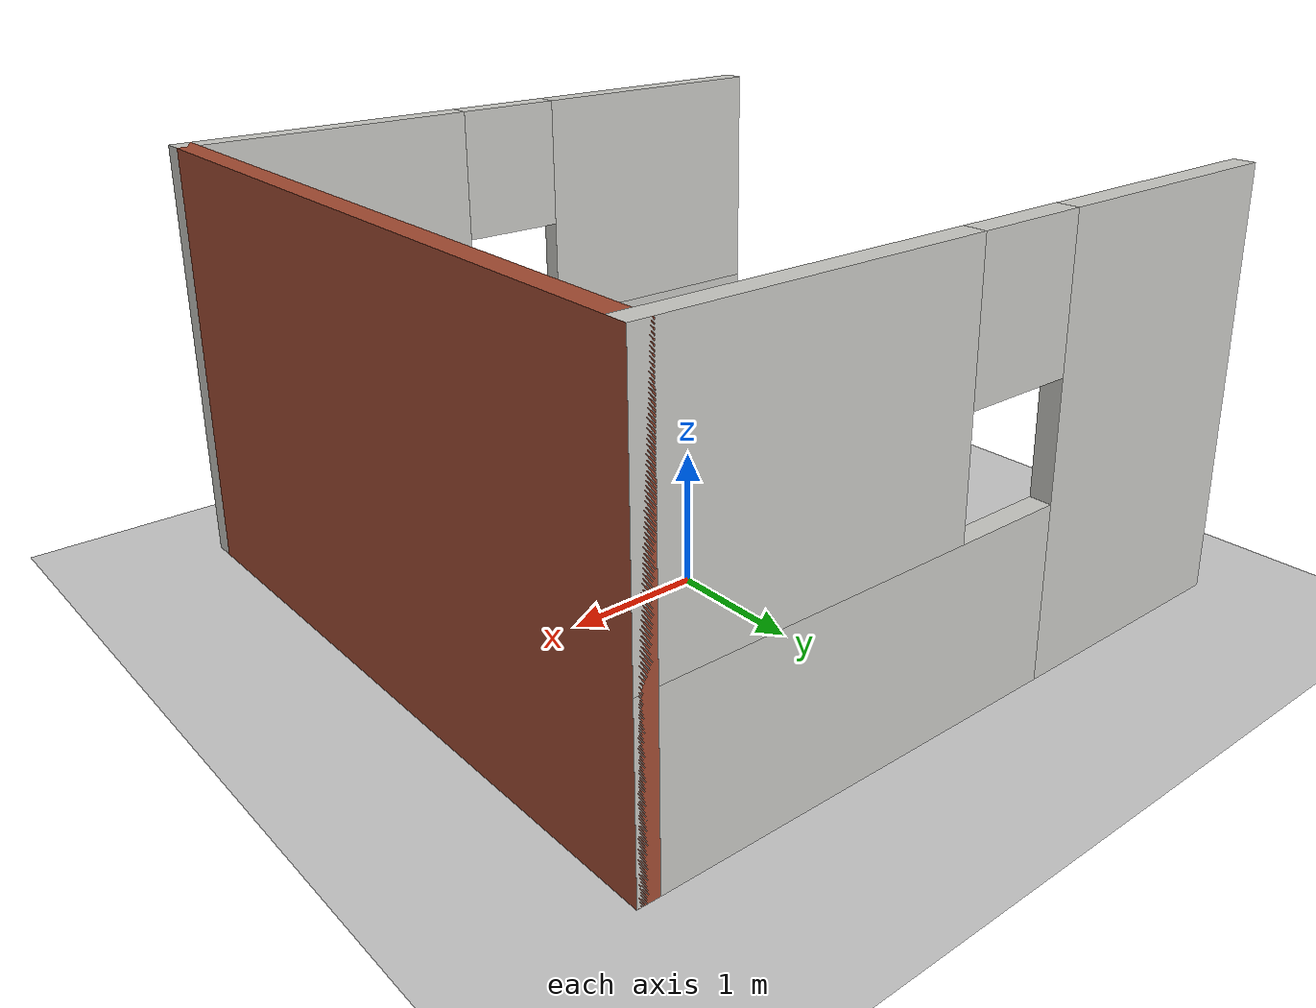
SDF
<sdf version="1.6">
 <world name="default">
  <light name="sun" type="directional">
   <pose>0 0 10 0 -0 0</pose>
   <diffuse>0.8 0.8 0.8 1</diffuse>
   <specular>0.2 0.2 0.2 1</specular>
   <attenuation>
    <range>1000</range>
    <constant>0.9</constant>
    <linear>0.01</linear>
    <quadratic>0.001</quadratic>
   </attenuation>
   <direction>-0.5 0.1 -0.9</direction>
  </light>
  <model name="ground_plane">
   <static>1</static>
   <link name="link">
    <collision name="collision">
     <geometry><plane><normal>0 0 1</normal><size>100 100</size></plane></geometry>
     <surface>
      <contact><collide_bitmask>65535</collide_bitmask></contact>
      <friction><ode><mu>100</mu><mu2>50</mu2></ode></friction>
     </surface>
    </collision>
    <visual name="visual">
     <cast_shadows>0</cast_shadows>
     <geometry><plane><normal>0 0 1</normal><size>100 100</size></plane></geometry>
     <material>
      <script><uri>file://media/materials/scripts/gazebo.material</uri><name>Gazebo/Grey</name></script>
     </material>
    </visual>
   </link>
  </model>
  <gravity>0 0 -9.8</gravity>
  <magnetic_field>6e-06 2.3e-05 -4.2e-05</magnetic_field>
  <atmosphere type="adiabatic"/>
  <physics name="default_physics" default="0" type="ode">
   <max_step_size>0.001</max_step_size>
   <real_time_factor>1</real_time_factor>
   <real_time_update_rate>1000</real_time_update_rate>
  </physics>
  <scene><ambient>0.4 0.4 0.4 1</ambient><background>0.7 0.7 0.7 1</background><shadows>1</shadows></scene>
  <audio><device>default</device></audio>
  <spherical_coordinates>
   <surface_model>EARTH_WGS84</surface_model>
   <latitude_deg>0</latitude_deg>
   <longitude_deg>0</longitude_deg>
   <elevation>0</elevation>
   <heading_deg>0</heading_deg>
  </spherical_coordinates>
  <model name="house_5x5_open_color">
   <pose>-0.019436 0.063411 0.146147 0 -0 0</pose>
   <link name="Wall_0">
    <pose>-0 2.425 0 0 -0 0</pose>
    <visual name="Wall_0_Visual_0">
     <pose>-1.56747 0 1.5 0 -0 0</pose>
     <geometry><box><size>1.86506 0.15 3</size></box></geometry>
     <material>
      <script><uri>file://media/materials/scripts/gazebo.material</uri><name>Gazebo/CeilingTiled</name></script>
      <ambient>0.760784 0.662745 0.627451 1</ambient>
     </material>
     <meta><layer>0</layer></meta>
    </visual>
    <collision name="Wall_0_Collision_0">
     <geometry><box><size>1.86506 0.15 3</size></box></geometry>
     <pose>-1.56747 0 1.5 0 -0 0</pose>
    </collision>
    <visual name="Wall_0_Visual_1">
     <pose>0.93253 0 0.6 0 -0 0</pose>
     <geometry><box><size>3.13494 0.15 1.2</size></box></geometry>
     <material>
      <script><uri>file://media/materials/scripts/gazebo.material</uri><name>Gazebo/CeilingTiled</name></script>
      <ambient>0.760784 0.662745 0.627451 1</ambient>
     </material>
     <meta><layer>0</layer></meta>
    </visual>
    <collision name="Wall_0_Collision_1">
     <geometry><box><size>3.13494 0.15 1.2</size></box></geometry>
     <pose>0.93253 0 0.6 0 -0 0</pose>
    </collision>
    <visual name="Wall_0_Visual_2">
     <pose>1.33253 0 2.1 0 -0 0</pose>
     <geometry><box><size>2.33494 0.15 1.8</size></box></geometry>
     <material>
      <script><uri>file://media/materials/scripts/gazebo.material</uri><name>Gazebo/CeilingTiled</name></script>
      <ambient>0.760784 0.662745 0.627451 1</ambient>
     </material>
     <meta><layer>0</layer></meta>
    </visual>
    <collision name="Wall_0_Collision_2">
     <geometry><box><size>2.33494 0.15 1.8</size></box></geometry>
     <pose>1.33253 0 2.1 0 -0 0</pose>
    </collision>
    <visual name="Wall_0_Visual_3">
     <pose>-0.23494 0 2.5 0 -0 0</pose>
     <geometry><box><size>0.8 0.15 1</size></box></geometry>
     <material>
      <script><uri>file://media/materials/scripts/gazebo.material</uri><name>Gazebo/CeilingTiled</name></script>
      <ambient>0.760784 0.662745 0.627451 1</ambient>
     </material>
     <meta><layer>0</layer></meta>
    </visual>
    <collision name="Wall_0_Collision_3">
     <geometry><box><size>0.8 0.15 1</size></box></geometry>
     <pose>-0.23494 0 2.5 0 -0 0</pose>
    </collision>
   </link>
   <link name="Wall_1">
    <collision name="Wall_1_Collision">
     <geometry><box><size>5 0.15 3</size></box></geometry>
     <pose>0 0 1.5 0 -0 0</pose>
    </collision>
    <visual name="Wall_1_Visual">
     <pose>0 0 1.5 0 -0 0</pose>
     <geometry><box><size>5 0.15 3</size></box></geometry>
     <material>
      <script><uri>file://media/materials/scripts/gazebo.material</uri><name>Gazebo/Bricks</name></script>
      <ambient>1 1 1 1</ambient>
     </material>
     <meta><layer>0</layer></meta>
    </visual>
    <pose>2.425 -0 0 0 -0 -1.5708</pose>
   </link>
   <link name="Wall_2">
    <pose>-0 -2.425 0 0 -0 3.14159</pose>
    <visual name="Wall_2_Visual_0">
     <pose>-1.40097 0 1.5 0 -0 0</pose>
     <geometry><box><size>2.19806 0.15 3</size></box></geometry>
     <material>
      <script><uri>file://media/materials/scripts/gazebo.material</uri><name>Gazebo/CeilingTiled</name></script>
      <ambient>0.921569 0.807843 0.615686 1</ambient>
     </material>
     <meta><layer>0</layer></meta>
    </visual>
    <collision name="Wall_2_Collision_0">
     <geometry><box><size>2.19806 0.15 3</size></box></geometry>
     <pose>-1.40097 0 1.5 0 -0 0</pose>
    </collision>
    <visual name="Wall_2_Visual_1">
     <pose>1.09903 0 0.6 0 -0 0</pose>
     <geometry><box><size>2.80194 0.15 1.2</size></box></geometry>
     <material>
      <script><uri>file://media/materials/scripts/gazebo.material</uri><name>Gazebo/CeilingTiled</name></script>
      <ambient>0.921569 0.807843 0.615686 1</ambient>
     </material>
     <meta><layer>0</layer></meta>
    </visual>
    <collision name="Wall_2_Collision_1">
     <geometry><box><size>2.80194 0.15 1.2</size></box></geometry>
     <pose>1.09903 0 0.6 0 -0 0</pose>
    </collision>
    <visual name="Wall_2_Visual_2">
     <pose>1.49903 0 2.1 0 -0 0</pose>
     <geometry><box><size>2.00194 0.15 1.8</size></box></geometry>
     <material>
      <script><uri>file://media/materials/scripts/gazebo.material</uri><name>Gazebo/CeilingTiled</name></script>
      <ambient>0.921569 0.807843 0.615686 1</ambient>
     </material>
     <meta><layer>0</layer></meta>
    </visual>
    <collision name="Wall_2_Collision_2">
     <geometry><box><size>2.00194 0.15 1.8</size></box></geometry>
     <pose>1.49903 0 2.1 0 -0 0</pose>
    </collision>
    <visual name="Wall_2_Visual_3">
     <pose>0.098061 0 2.5 0 -0 0</pose>
     <geometry><box><size>0.8 0.15 1</size></box></geometry>
     <material>
      <script><uri>file://media/materials/scripts/gazebo.material</uri><name>Gazebo/CeilingTiled</name></script>
      <ambient>0.921569 0.807843 0.615686 1</ambient>
     </material>
     <meta><layer>0</layer></meta>
    </visual>
    <collision name="Wall_2_Collision_3">
     <geometry><box><size>0.8 0.15 1</size></box></geometry>
     <pose>0.098061 0 2.5 0 -0 0</pose>
    </collision>
   </link>
   <static>1</static>
  </model>
  <model name="unit_sphere">
   <link name="link">
    <inertial>
     <mass>1</mass>
     <inertia><ixx>0.1</ixx><ixy>0</ixy><ixz>0</ixz><iyy>0.1</iyy><iyz>0</iyz><izz>0.1</izz></inertia>
    </inertial>
    <visual name="visual">
     <geometry><sphere><radius>0.132678</radius></sphere></geometry>
     <material>
      <script><name>Gazebo/Blue</name><uri>file://media/materials/scripts/gazebo.material</uri></script>
      <shader type="vertex"><normal_map>__default__</normal_map></shader>
      <ambient>0 0 1 1</ambient>
      <diffuse>0 0 1 1</diffuse>
      <specular>0.1 0.1 0.1 1</specular>
      <emissive>0 0 0 1</emissive>
     </material>
    </visual>
    <collision name="collision">
     <geometry><sphere><radius>0.132678</radius></sphere></geometry>
     <surface>
      <friction>
       <ode><mu>1</mu><mu2>1</mu2><fdir1>0 0 0</fdir1><slip1>0</slip1><slip2>0</slip2></ode>
       <torsional>
        <coefficient>1</coefficient>
        <patch_radius>0</patch_radius>
        <surface_radius>0</surface_radius>
        <use_patch_radius>1</use_patch_radius>
        <ode><slip>0</slip></ode>
       </torsional>
      </friction>
      <bounce><restitution_coefficient>0</restitution_coefficient><threshold>1e+06</threshold></bounce>
      <contact>
       <collide_without_contact>0</collide_without_contact>
       <collide_without_contact_bitmask>1</collide_without_contact_bitmask>
       <collide_bitmask>1</collide_bitmask>
       <ode>
        <soft_cfm>0</soft_cfm>
        <soft_erp>0.2</soft_erp>
        <kp>1e+13</kp>
        <kd>1</kd>
        <max_vel>0.01</max_vel>
        <min_depth>0</min_depth>
       </ode>
       <bullet>
        <split_impulse>1</split_impulse>
        <split_impulse_penetration_threshold>-0.01</split_impulse_penetration_threshold>
        <soft_cfm>0</soft_cfm>
        <soft_erp>0.2</soft_erp>
        <kp>1e+13</kp>
        <kd>1</kd>
       </bullet>
      </contact>
     </surface>
    </collision>
   </link>
   <static>0</static>
   <pose>-0.031806 0.84817 0.907678 -0.005103 0.012231 -5.5e-05</pose>
  </model>
 </world>
</sdf>
